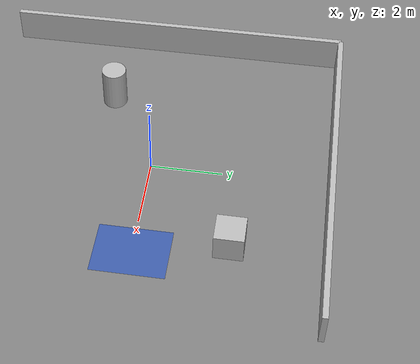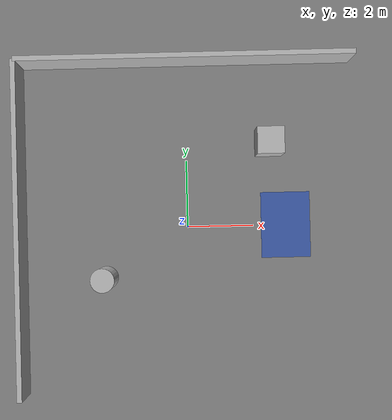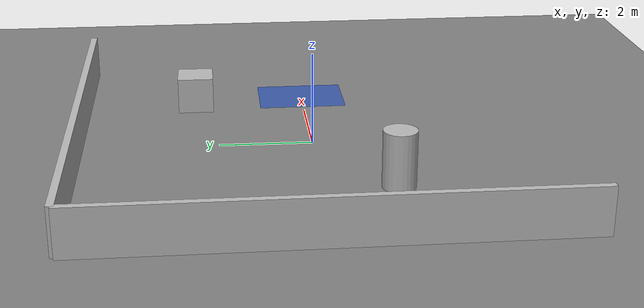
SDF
<sdf version="1.9">
 <world name="slip_test">
  <physics name="1ms" type="ode">
   <max_step_size>0.001</max_step_size>
   <real_time_factor>1.0</real_time_factor>
  </physics>
  <plugin filename="gz-sim-physics-system" name="gz::sim::systems::Physics"/>
  <plugin filename="gz-sim-sensors-system" name="gz::sim::systems::Sensors">
   <render_engine>ogre2</render_engine>
  </plugin>
  <plugin filename="gz-sim-scene-broadcaster-system" name="gz::sim::systems::SceneBroadcaster"/>
  <plugin filename="gz-sim-user-commands-system" name="gz::sim::systems::UserCommands"/>
  <plugin filename="gz-sim-imu-system" name="gz::sim::systems::Imu"/>
  <light type="directional" name="sun">
   <pose>0 0 10 0 0 0</pose>
   <diffuse>0.8 0.8 0.8 1</diffuse>
   <direction>-0.5 0.1 -0.9</direction>
  </light>
  <model name="slip_zone">
   <static>true</static>
   <pose>3 0 0.001 0 0 0</pose>
   <link name="link">
    <collision name="collision">
     <geometry><box><size>1.5 2.0 0.002</size></box></geometry>
     <surface><friction><ode><mu>0.05</mu><mu2>0.05</mu2></ode></friction></surface>
    </collision>
    <visual name="visual">
     <geometry><box><size>1.5 2.0 0.002</size></box></geometry>
     <material><ambient>0.1 0.3 0.8 0.6</ambient><diffuse>0.1 0.3 0.8 0.6</diffuse></material>
    </visual>
   </link>
  </model>
  <model name="ground_plane">
   <static>true</static>
   <link name="link">
    <collision name="collision">
     <geometry><plane><normal>0 0 1</normal><size>20 20</size></plane></geometry>
     <surface><friction><ode><mu>0.8</mu><mu2>0.8</mu2></ode></friction></surface>
    </collision>
    <visual name="visual">
     <geometry><plane><normal>0 0 1</normal><size>20 20</size></plane></geometry>
     <material><ambient>0.5 0.5 0.5 1</ambient><diffuse>0.5 0.5 0.5 1</diffuse></material>
    </visual>
   </link>
  </model>
  <model name="north_wall">
   <static>true</static>
   <pose>0 5 0.5 0 0 0</pose>
   <link name="link">
    <collision name="collision"><geometry><box><size>10 0.15 1</size></box></geometry></collision>
    <visual name="visual"><geometry><box><size>10 0.15 1</size></box></geometry></visual>
   </link>
  </model>
  <model name="west_wall">
   <static>true</static>
   <pose>-5 0 0.5 0 0 0</pose>
   <link name="link">
    <collision name="collision"><geometry><box><size>0.15 10 1</size></box></geometry></collision>
    <visual name="visual"><geometry><box><size>0.15 10 1</size></box></geometry></visual>
   </link>
  </model>
  <model name="landmark_a">
   <static>true</static>
   <pose>2.5 2.5 0.4 0 0 0</pose>
   <link name="link">
    <collision name="collision"><geometry><box><size>0.8 0.8 0.8</size></box></geometry></collision>
    <visual name="visual"><geometry><box><size>0.8 0.8 0.8</size></box></geometry></visual>
   </link>
  </model>
  <model name="landmark_b">
   <static>true</static>
   <pose>-2.5 -1.5 0.6 0 0 0</pose>
   <link name="link">
    <collision name="collision">
     <geometry><cylinder><radius>0.35</radius><length>1.2</length></cylinder></geometry>
    </collision>
    <visual name="visual">
     <geometry><cylinder><radius>0.35</radius><length>1.2</length></cylinder></geometry>
    </visual>
   </link>
  </model>
 </world>
</sdf>
